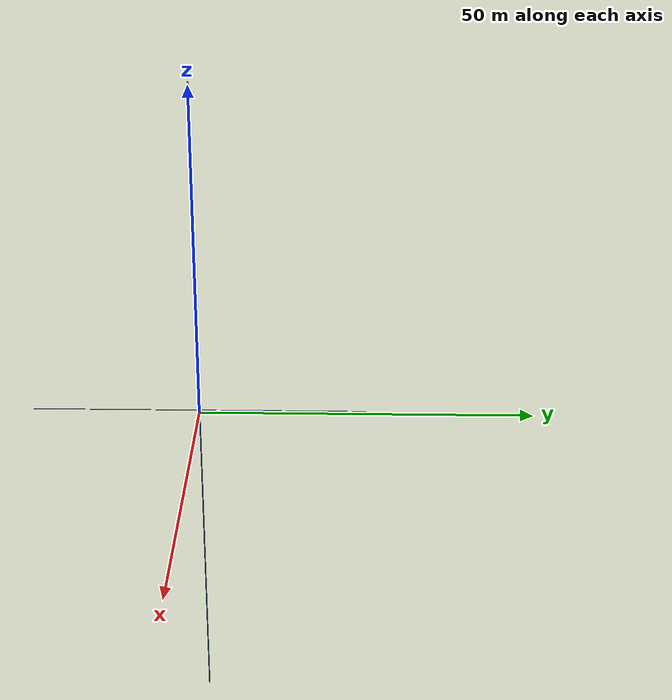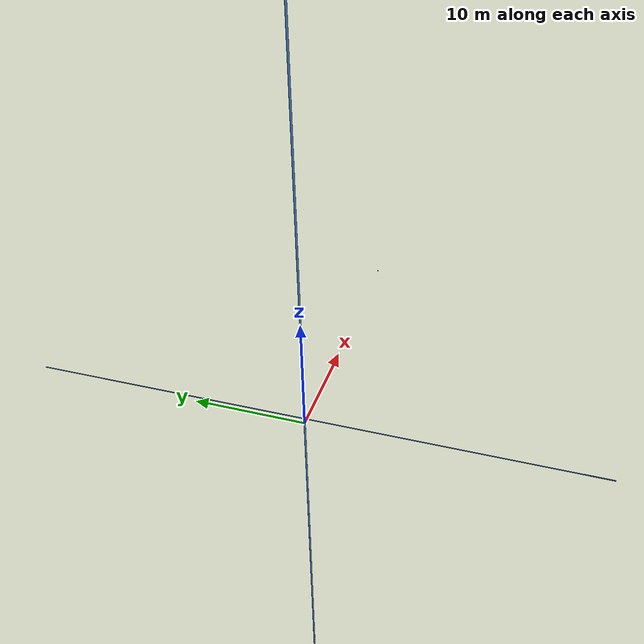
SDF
<?xml version="1.0" ?>
<!-- Irrigation Pipe Model - 灌溉管道Gazebo模型 -->
<sdf version="1.7">
  <model name="irrigation_pipe">
    <static>true</static>
    <allow_auto_disable>true</allow_auto_disable>
    <link name="pipe">
      <!-- 主干管道 -->
      <collision name="main_pipe_collision">
        <geometry><cylinder><radius>0.08</radius><length>100</length></cylinder></geometry>
        <pose>0 0 0.5 0 0 1.5708</pose>
      </collision>
      <visual name="main_pipe_visual">
        <geometry><cylinder><radius>0.08</radius><length>100</length></cylinder></geometry>
        <pose>0 0 0.5 0 0 1.5708</pose>
        <material>
          <ambient>0.2 0.4 0.7 1</ambient>
          <diffuse>0.25 0.5 0.8 1</diffuse>
          <specular>0.2 0.2 0.2 1</specular>
        </material>
      </visual>
      <!-- 支管道 -->
      <collision name="branch_collision">
        <geometry><cylinder><radius>0.04</radius><length>50</length></cylinder></geometry>
        <pose>0 0 0.5 1.5708 0 0</pose>
      </collision>
      <visual name="branch_visual">
        <geometry><cylinder><radius>0.04</radius><length>50</length></cylinder></geometry>
        <pose>0 0 0.5 1.5708 0 0</pose>
        <material><ambient>0.2 0.4 0.7 1</ambient><diffuse>0.25 0.5 0.8 1</diffuse></material>
      </visual>
      <!-- 喷头 -->
      <collision name="sprinkler_collision">
        <geometry><sphere><radius>0.06</radius></sphere></geometry>
        <pose>25 0 0.65 0 0 0</pose>
      </collision>
      <visual name="sprinkler_visual">
        <geometry><sphere><radius>0.06</radius></sphere></geometry>
        <pose>25 0 0.65 0 0 0</pose>
        <material><ambient>0.3 0.3 0.3 1</ambient><diffuse>0.4 0.4 0.4 1</diffuse></material>
      </visual>
    </link>
  </model>
</sdf>
